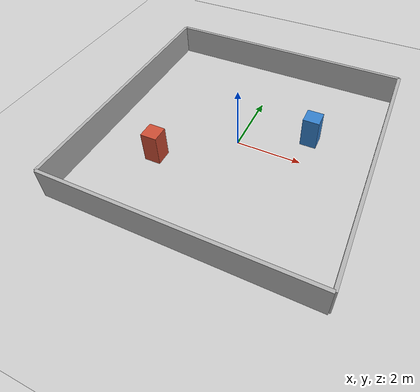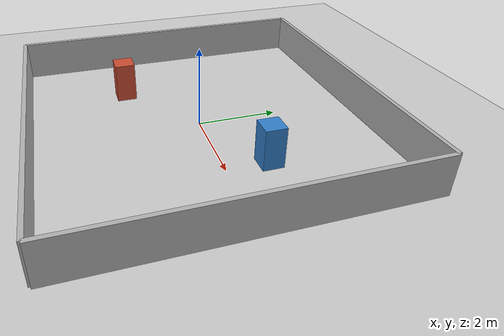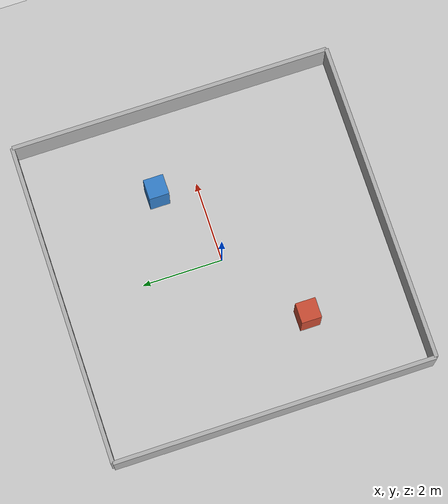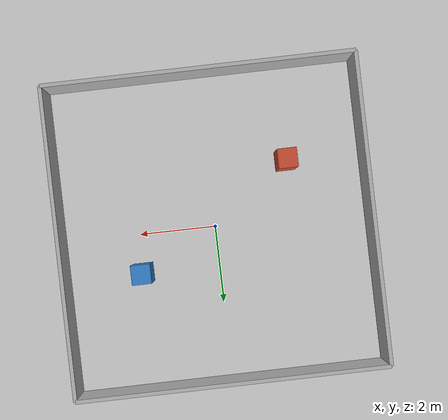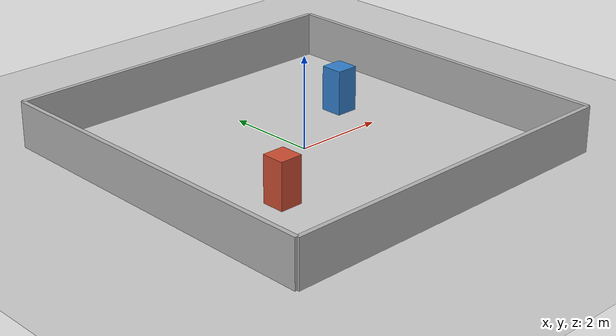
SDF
<?xml version="1.0" ?>
<sdf version="1.8">
  <world name="locus_world">

    <!-- Physics engine settings -->
    <physics name="1ms" type="ignored">
      <max_step_size>0.001</max_step_size>
      <real_time_factor>1.0</real_time_factor>
    </physics>

    <!-- Required Gazebo Harmonic plugins -->
    <plugin filename="gz-sim-physics-system"
            name="gz::sim::systems::Physics"/>
    <plugin filename="gz-sim-user-commands-system"
            name="gz::sim::systems::UserCommands"/>
    <plugin filename="gz-sim-scene-broadcaster-system"
            name="gz::sim::systems::SceneBroadcaster"/>

    <!-- Sunlight -->
    <light name="sun" type="directional">
      <cast_shadows>true</cast_shadows>
      <pose>0 0 10 0 0 0</pose>
      <diffuse>0.8 0.8 0.8 1</diffuse>
      <specular>0.2 0.2 0.2 1</specular>
      <direction>-0.5 0.1 -0.9</direction>
    </light>

    <!-- Ground plane -->
    <model name="ground_plane">
      <static>true</static>
      <link name="link">
        <collision name="collision">
          <geometry><plane><normal>0 0 1</normal></plane></geometry>
        </collision>
        <visual name="visual">
          <geometry><plane><normal>0 0 1</normal><size>20 20</size></plane></geometry>
          <material>
            <ambient>0.8 0.8 0.8 1</ambient>
            <diffuse>0.8 0.8 0.8 1</diffuse>
          </material>
        </visual>
      </link>
    </model>

    <!-- Room walls — 8x8 meter room -->

    <!-- North wall -->
    <model name="wall_north">
      <static>true</static>
      <pose>0 4 0.5 0 0 0</pose>
      <link name="link">
        <collision name="collision">
          <geometry><box><size>8 0.1 1</size></box></geometry>
        </collision>
        <visual name="visual">
          <geometry><box><size>8 0.1 1</size></box></geometry>
          <material><ambient>0.7 0.7 0.7 1</ambient></material>
        </visual>
      </link>
    </model>

    <!-- South wall -->
    <model name="wall_south">
      <static>true</static>
      <pose>0 -4 0.5 0 0 0</pose>
      <link name="link">
        <collision name="collision">
          <geometry><box><size>8 0.1 1</size></box></geometry>
        </collision>
        <visual name="visual">
          <geometry><box><size>8 0.1 1</size></box></geometry>
          <material><ambient>0.7 0.7 0.7 1</ambient></material>
        </visual>
      </link>
    </model>

    <!-- East wall -->
    <model name="wall_east">
      <static>true</static>
      <pose>4 0 0.5 0 0 0</pose>
      <link name="link">
        <collision name="collision">
          <geometry><box><size>0.1 8 1</size></box></geometry>
        </collision>
        <visual name="visual">
          <geometry><box><size>0.1 8 1</size></box></geometry>
          <material><ambient>0.7 0.7 0.7 1</ambient></material>
        </visual>
      </link>
    </model>

    <!-- West wall -->
    <model name="wall_west">
      <static>true</static>
      <pose>-4 0 0.5 0 0 0</pose>
      <link name="link">
        <collision name="collision">
          <geometry><box><size>0.1 8 1</size></box></geometry>
        </collision>
        <visual name="visual">
          <geometry><box><size>0.1 8 1</size></box></geometry>
          <material><ambient>0.7 0.7 0.7 1</ambient></material>
        </visual>
      </link>
    </model>

    <!-- Two interior obstacles for navigation testing -->
    <!-- Box obstacle 1 — taller so lidar hits it reliably -->
	<model name="box_obstacle_1">
	  <static>true</static>
	  <pose>2 1 0.5 0 0 0</pose>
	  <link name="link">
	    <collision name="collision">
	      <geometry><box><size>0.5 0.5 1.0</size></box></geometry>
   	 </collision>
   	 <visual name="visual">
	      <geometry><box><size>0.5 0.5 1.0</size></box></geometry>
	      <material><ambient>0.2 0.5 0.8 1</ambient></material>
  	  </visual>
 	 </link>
	</model>

	<!-- Box obstacle 2 — taller so lidar hits it reliably -->
	<model name="box_obstacle_2">
	  <static>true</static>
	  <pose>-2 -1.5 0.5 0 0 0</pose>
 	 <link name="link">
 	   <collision name="collision">
 	     <geometry><box><size>0.5 0.5 1.0</size></box></geometry>
	    </collision>
	    <visual name="visual">
	      <geometry><box><size>0.5 0.5 1.0</size></box></geometry>
	      <material><ambient>0.8 0.3 0.2 1</ambient></material>
	    </visual>
	  </link>
	</model>

  </world>
</sdf>
